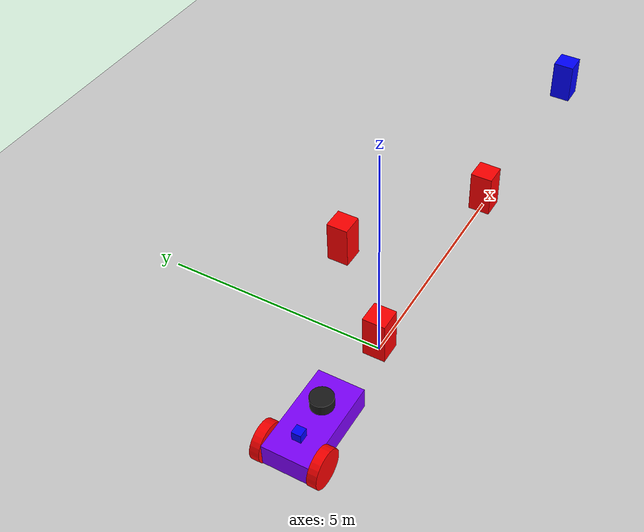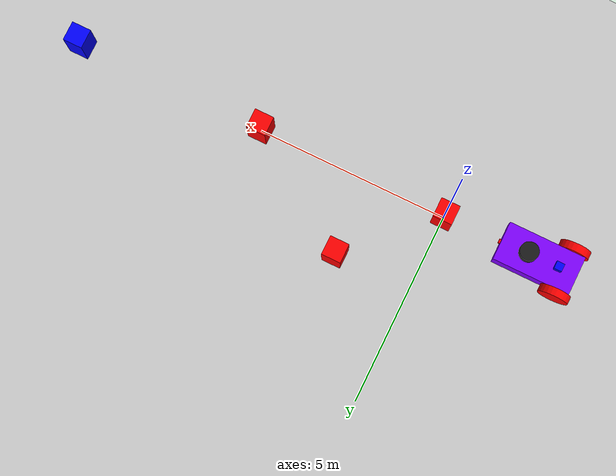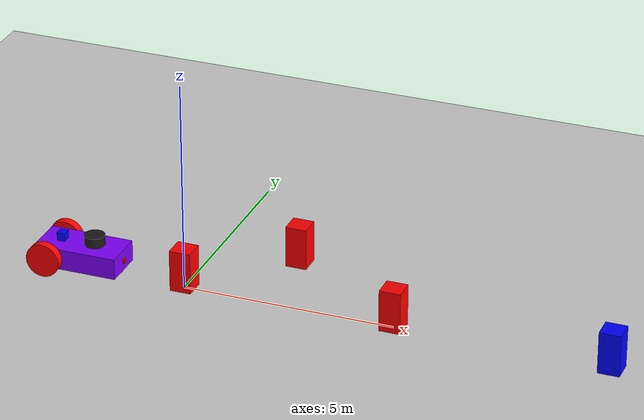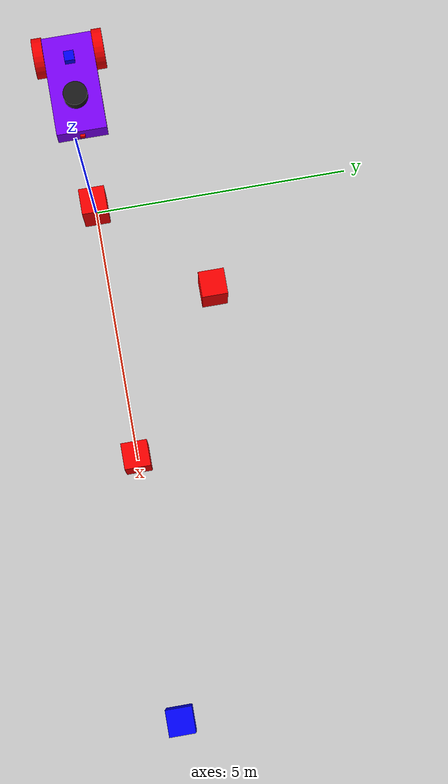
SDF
<?xml version="1.0" ?>
<sdf version="1.9">
  <world name="explore_world">
      <scene>
      <ambient>0.4 0.4 0.4 1</ambient>
      <background>0.6 0.8 0.6 1</background>
      <shadows>true</shadows>
    </scene>
    <gravity>0 0 -9.8</gravity>

<!-- outros elementos omitidos-->

<spherical_coordinates>
  <surface_model>EARTH_WGS84</surface_model>
  <world_frame_orientation>ENU</world_frame_orientation>
  <latitude_deg>38.161479</latitude_deg>
  <longitude_deg>-122.454630</longitude_deg>
  <elevation>0</elevation>
  <heading_deg>0</heading_deg>
</spherical_coordinates>

    <!-- Plugins de mundo -->
    <plugin filename="libignition-gazebo-physics-system.so" name="ignition::gazebo::systems::Physics"/>
    <plugin filename="libignition-gazebo-user-commands-system.so" name="ignition::gazebo::systems::UserCommands"/>
    <plugin filename="libignition-gazebo-scene-broadcaster-system.so" name="ignition::gazebo::systems::SceneBroadcaster"/>
    <plugin filename="libignition-gazebo-sensors-system.so" name="ignition::gazebo::systems::Sensors">
      <render_engine>ogre2</render_engine>
    </plugin>

    <!-- Chão -->
        <model name="ground_plane">
  <static>true</static>

  <link name="link">
    <collision name="collision">
      <geometry>
        <plane>
          <normal>0 0 1</normal>
          <size>50 50</size>
        </plane>
      </geometry>
    </collision>

    <visual name="visual">
      <geometry>
        <plane>
          <normal>0 0 1</normal>
          <size>50 50</size>
        </plane>
      </geometry>

      <material>
        <pbr>
          <metal>
            <albedo_map>
              file:///home/julia/ros2_workshop/workshop_assets/FelizNatalMilena.png  <!-- MILENA JAMAIS ABRA O LINK-->
            </albedo_map>
            <roughness>1.0</roughness>
            <metalness>0.0</metalness>
          </metal>
        </pbr>
      </material>

      <cast_shadows>false</cast_shadows>
    </visual>
  </link>
</model>

    <!-- Objetivo -->
    <model name="box_obstacle">
        <static>true</static>
        <pose>10 0 0.5 0 0 0</pose>
        <link name="link">
          <collision name="col"><geometry><box><size>0.5 0.5 1.0</size></box></geometry></collision>
          <visual name="vis"><geometry><box><size>0.5 0.5 1.0</size></box></geometry><material><diffuse>0 0 1 1</diffuse></material></visual>
        </link>
    </model>

    <!-- Obstáculo 1 -->
    <model name="box_1obstacle">
      <static>true</static>
      <pose>5 0 0.5 0 0 0</pose>
      <link name="link">
        <collision name="col"><geometry><box><size>0.5 0.5 1.0</size></box></geometry></collision>
        <visual name="vis"><geometry><box><size>0.5 0.5 1.0</size></box></geometry><material><diffuse>1 0 0 1</diffuse></material></visual>
      </link>
    </model>

    <!-- Obstáculo 2 -->
    <model name="box_2obstacle">
      <static>true</static>
      <pose>0 0 0.5 0 0 0</pose>
      <link name="link">
        <collision name="col"><geometry><box><size>0.5 0.5 1.0</size></box></geometry></collision>
        <visual name="vis"><geometry><box><size>0.5 0.5 1.0</size></box></geometry><material><diffuse>1 0 0 1</diffuse></material></visual>
      </link>
    </model>

    <!-- Obstáculo 3 -->
    <model name="box_3obstacle">
      <static>true</static>
      <pose>2 2 0.5 0 0 0</pose>
      <link name="link">
        <collision name="col"><geometry><box><size>0.5 0.5 1.0</size></box></geometry></collision>
        <visual name="vis"><geometry><box><size>0.5 0.5 1.0</size></box></geometry><material><diffuse>1 0 0 1</diffuse></material></visual>
      </link>
    </model>

    <!-- Luz -->
    <light name="sun" type="directional">
      <pose>0 0 10 0 0 0</pose>
      <direction>-0.5 0.1 -1</direction>
      <diffuse>0.8 0.8 0.8 1</diffuse>
      <specular>0.2 0.2 0.2 1</specular>
      <cast_shadows>true</cast_shadows>
    </light>

    <!-- Inclui o modelo com câmera -->

<include>
  <uri>file:///root/workshop_assets/assets/models/vehicle_blue/model_without_camera.sdf</uri>
  <pose>-3 0 0 0 0 0</pose>
  <name>vehicle_blue</name>
</include>

  </world>
</sdf>

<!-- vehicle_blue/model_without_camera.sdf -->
<sdf version="1.9">
    <!-- ==================== ROBÔ ==================== -->
    <model name="vehicle_blue" canonical_link="base_link">

      <!-- Frames auxiliares -->
      <frame name="caster_frame" attached_to="base_link">
        <pose>0.8 0 -0.2 0 0 0</pose>
      </frame>
      <frame name="lidar_frame" attached_to="base_link">
        <pose>0.8 0 0.5 0 0 0</pose>
      </frame>

      <!-- Chassi -->
      <link name="base_link">
        <pose relative_to="__model__">0.5 0 0.4 0 0 0</pose>
        <inertial>
          <mass>1.14395</mass>
          <inertia>
            <ixx>0.095329</ixx><ixy>0</ixy><ixz>0</ixz>
            <iyy>0.381317</iyy><iyz>0</iyz><izz>0.476646</izz>
          </inertia>
        </inertial>

        <visual name="visual">
          <geometry><box><size>2.0 1.0 0.5</size></box></geometry>
          <material>
            <ambient>0.0 1.0 0.0 1</ambient>
            <diffuse>0.5 0.0 1.0 1</diffuse>
            <specular>1.0 0.0 0.5 1</specular>
          </material>
        </visual>

        <collision name="collision">
          <geometry><box><size>2.0 1.0 0.5</size></box></geometry>
        </collision>

        <!-- IMU no chassi -->
        <sensor name="imu_sensor" type="imu">
          <always_on>1</always_on>
          <update_rate>1</update_rate>
          <visualize>true</visualize>
          <topic>imu</topic>
        </sensor>
      </link>

      <!-- LiDAR em link próprio -->
      <link name="lidar_link">
        <pose>0.8 0.0 0.8 0 0 0</pose>
        <inertial>
          <mass>0.1</mass>
          <inertia>
            <ixx>0.000166667</ixx><iyy>0.000166667</iyy><izz>0.000166667</izz>
          </inertia>
        </inertial>
        <collision name="collision">
          <geometry><cylinder><radius>0.24</radius><length>0.24</length></cylinder></geometry>
        </collision>
        <visual name="visual">
          <geometry><cylinder><radius>0.24</radius><length>0.24</length></cylinder></geometry>
          <material><diffuse>0.1 0.1 0.1 1</diffuse></material>
        </visual>

        <sensor name="gpu_lidar" type="gpu_lidar">
          <pose relative_to="lidar_frame">0 0 0 0 0 0</pose>
          <topic>/scan</topic>
          <update_rate>10</update_rate>
          <lidar>
            <scan>
              <horizontal>
                <samples>250</samples>
                <resolution>1</resolution>
                <min_angle>-2.0</min_angle>
                <max_angle> 2.0</max_angle>
              </horizontal>
              <vertical>
                <samples>1</samples>
                <resolution>0.01</resolution>
                <min_angle>0</min_angle>
                <max_angle>0</max_angle>
              </vertical>
            </scan>
            <range>
              <min>0.08</min>
              <max>10.0</max>
              <resolution>0.01</resolution>
            </range>
          </lidar>
          <always_on>1</always_on>
          <visualize>true</visualize>
        </sensor>
      </link>

      <!-- Junta fixa LiDAR -->
      <joint name="lidar_fixed" type="fixed">
        <parent>base_link</parent>
        <child>lidar_link</child>
      </joint>

      <!-- Câmera em link próprio + sensor -->

      <link name="camera">
        <pose relative_to="base_link">1 0 0 0 0 0</pose>
        <visual name="visual">
          <geometry><box><size>0.1 0.1 0.1</size></box></geometry>
          <material>
            <ambient>1.0 0.0 0.0 1</ambient>
            <diffuse>1.0 0.0 0.0 1</diffuse>
            <specular>1.0 0.0 0.0 1</specular>
          </material>
        </visual>
        <collision name="collision">
          <geometry><box><size>0.1 0.1 0.1</size></box></geometry>
        </collision>

        <sensor type="camera" name="camera_sensor">
          <topic>/camera/image_raw</topic>
          <update_rate>30.0</update_rate>
          <camera name="head">
            <horizontal_fov>1.3962634</horizontal_fov>
            <image><width>800</width><height>800</height><format>R8G8B8</format></image>
            <clip><near>0.02</near><far>300</far></clip>
            <noise><type>gaussian</type><mean>0.0</mean><stddev>0.007</stddev></noise>
          </camera>
        </sensor>
      </link>

      <joint name="camera_joint" type="fixed">
        <parent>base_link</parent>
        <child>camera</child>
        <pose>1 0 0 0 0 0</pose>
      </joint>

<!-- Modulo GPS -->

<link name="gps_link">
  <pose relative_to="base_link">-0.5 0 0.2 0 0 0</pose>

  <visual name="visual">
    <geometry><box><size>0.2 0.2 0.5</size></box></geometry>
    <material>
      <ambient>0.0 0.0 1.0 1</ambient>
      <diffuse>0.0 0.0 1.0 1</diffuse>
      <specular>0.0 0.0 1.0 1</specular>
    </material>
  </visual>

  <sensor name="navsat" type="navsat">
    <always_on>true</always_on>
    <update_rate>10</update_rate>
    <topic>/gps/fix</topic>
    <gz_frame_id>gps_link</gz_frame_id>
    <navsat>
      <position_sensing>
        <horizontal>
          <noise type="gaussian">
            <mean>0.0</mean>
            <stddev>0.0</stddev>
          </noise>
        </horizontal>
        <vertical>
          <noise type="gaussian">
            <mean>0.0</mean>
            <stddev>0.0</stddev>
          </noise>
        </vertical>
      </position_sensing>
    </navsat>
    <plugin name="navsat_plugin" filename="libgz-sim-navsat-system.so"/>
  </sensor>
</link>

<joint name="gps_joint" type="fixed">
  <parent>base_link</parent>
  <child>gps_link</child>
</joint>

      <!-- Rodas -->
      <link name="roda_esquerda">
        <pose relative_to="base_link">-0.7 0.6 0 -1.5707 0 0</pose>
        <inertial>
          <mass>1</mass>
          <inertia>
            <ixx>0.043333</ixx><ixy>0</ixy><ixz>0</ixz>
            <iyy>0.043333</iyy><iyz>0</iyz><izz>0.08</izz>
          </inertia>
        </inertial>
        <visual name="visual">
          <geometry><cylinder><radius>0.4</radius><length>0.2</length></cylinder></geometry>
          <material><ambient>1 0 0 1</ambient><diffuse>1 0 0 1</diffuse><specular>1 0 0 1</specular></material>
        </visual>
        <collision name="collision">
          <geometry><cylinder><radius>0.4</radius><length>0.2</length></cylinder></geometry>
        </collision>
      </link>

      <link name="roda_direita">
        <pose relative_to="base_link">-0.7 -0.6 0 -1.5707 0 0</pose>
        <inertial>
          <mass>1</mass>
          <inertia>
            <ixx>0.043333</ixx><ixy>0</ixy><ixz>0</ixz>
            <iyy>0.043333</iyy><iyz>0</iyz><izz>0.08</izz>
          </inertia>
        </inertial>
        <visual name="visual">
          <geometry><cylinder><radius>0.4</radius><length>0.2</length></cylinder></geometry>
          <material><ambient>1 0 0 1</ambient><diffuse>1 0 0 1</diffuse><specular>1 0 0 1</specular></material>
        </visual>
        <collision name="collision">
          <geometry><cylinder><radius>0.4</radius><length>0.2</length></cylinder></geometry>
        </collision>
      </link>

      <link name="caster">
        <pose relative_to="caster_frame"/>
        <inertial>
          <mass>1</mass>
          <inertia>
            <ixx>0.016</ixx><ixy>0</ixy><ixz>0</ixz>
            <iyy>0.016</iyy><iyz>0</iyz><izz>0.016</izz>
          </inertia>
        </inertial>
        <visual name="visual">
          <geometry><sphere><radius>0.2</radius></sphere></geometry>
          <material><ambient>0 1 0 1</ambient><diffuse>0 1 0 1</diffuse><specular>0 1 0 1</specular></material>
        </visual>
        <collision name="collision">
          <geometry><sphere><radius>0.2</radius></sphere></geometry>
        </collision>
      </link>

      <!-- Juntas -->
      <joint name="junta_roda_esquerda" type="revolute">
        <pose relative_to="roda_esquerda"/>
        <parent>base_link</parent>
        <child>roda_esquerda</child>
        <axis>
          <xyz expressed_in="__model__">0 1 0</xyz>
          <limit><lower>-1.79769e+308</lower><upper>1.79769e+308</upper></limit>
        </axis>
      </joint>

      <joint name="junta_roda_direita" type="revolute">
        <pose relative_to="roda_direita"/>
        <parent>base_link</parent>
        <child>roda_direita</child>
        <axis>
          <xyz expressed_in="__model__">0 1 0</xyz>
          <limit><lower>-1.79769e+308</lower><upper>1.79769e+308</upper></limit>
        </axis>
      </joint>

      <joint name="caster_wheel" type="ball">
        <parent>base_link</parent>
        <child>caster</child>
      </joint>

      <!-- Plugins do modelo -->
      <plugin filename="libignition-gazebo-diff-drive-system.so" name="ignition::gazebo::systems::DiffDrive">
        <left_joint>junta_roda_esquerda</left_joint>
        <right_joint>junta_roda_direita</right_joint>
        <wheel_separation>1.2</wheel_separation>
        <wheel_radius>0.4</wheel_radius>
        <odom_publish_frequency>1</odom_publish_frequency>
        <topic>/cmd_vel</topic>
        <odom_topic>/odom</odom_topic>
      </plugin>

      <plugin filename="libignition-gazebo-triggered-publisher-system.so" name="ignition::gazebo::systems::TriggeredPublisher">
        <input type="ignition.msgs.Boolean" topic="/wall/touched">
          <match>data: true</match>
        </input>
        <output type="ignition.msgs.Twist" topic="/cmd_vel">
          linear: {x: 0.0}, angular: {z: 0.0}
        </output>
      </plugin>

    </model>
</sdf>
